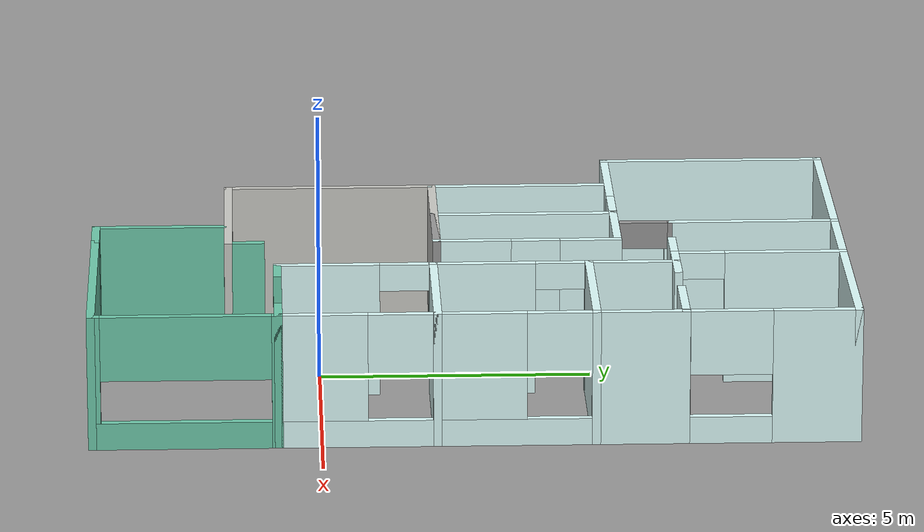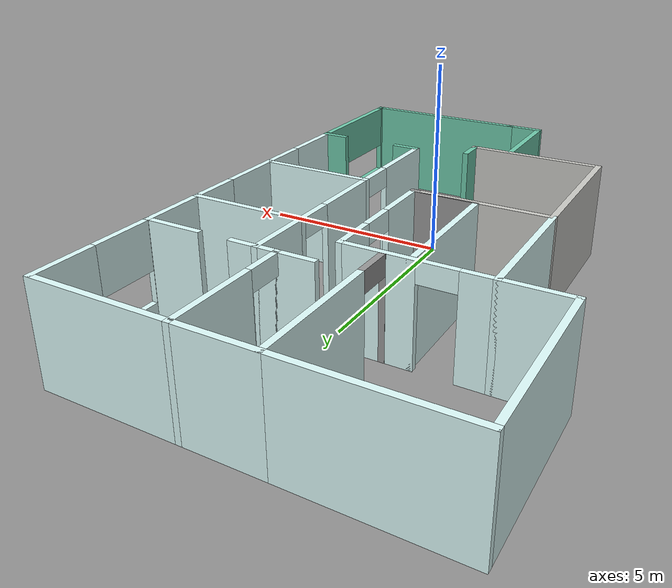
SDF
<?xml version='1.0'?>
<sdf version='1.6'>
  <model name='Building'>
    <pose frame=''>-0.715 2.755 0 0 -0 0</pose>
    <link name='Wall_1'>
      <collision name='Wall_1_Collision'>
        <geometry>
          <box>
            <size>3.5 0.15 2.5</size>
          </box>
        </geometry>
        <pose frame=''>0 0 1.25 0 -0 0</pose>
      </collision>
      <visual name='Wall_1_Visual'>
        <pose frame=''>0 0 1.25 0 -0 0</pose>
        <geometry>
          <box>
            <size>3.5 0.15 2.5</size>
          </box>
        </geometry>
        <material>
          <script>
            <uri>file://media/materials/scripts/gazebo.material</uri>
            <name>Gazebo/Grey</name>
          </script>
          <ambient>0.878431 1 0.996078 1</ambient>
        </material>
        <meta>
          <layer>0</layer>
        </meta>
      </visual>
      <pose frame=''>2.85 6.875 0 0 -0 0</pose>
    </link>
    <link name='Wall_10'>
      <pose frame=''>-2.1 2.775 0 0 -0 0</pose>
      <visual name='Wall_10_Visual_0'>
        <pose frame=''>-1.3425 0 1.25 0 -0 0</pose>
        <geometry>
          <box>
            <size>2.315 0.15 2.5</size>
          </box>
        </geometry>
        <material>
          <script>
            <uri>file://media/materials/scripts/gazebo.material</uri>
            <name>Gazebo/Grey</name>
          </script>
          <ambient>0.878431 1 0.996078 1</ambient>
        </material>
        <meta>
          <layer>0</layer>
        </meta>
      </visual>
      <collision name='Wall_10_Collision_0'>
        <geometry>
          <box>
            <size>2.315 0.15 2.5</size>
          </box>
        </geometry>
        <pose frame=''>-1.3425 0 1.25 0 -0 0</pose>
      </collision>
      <visual name='Wall_10_Visual_1'>
        <pose frame=''>1.6075 0 1.25 0 -0 0</pose>
        <geometry>
          <box>
            <size>1.785 0.15 2.5</size>
          </box>
        </geometry>
        <material>
          <script>
            <uri>file://media/materials/scripts/gazebo.material</uri>
            <name>Gazebo/Grey</name>
          </script>
          <ambient>0.878431 1 0.996078 1</ambient>
        </material>
        <meta>
          <layer>0</layer>
        </meta>
      </visual>
      <collision name='Wall_10_Collision_1'>
        <geometry>
          <box>
            <size>1.785 0.15 2.5</size>
          </box>
        </geometry>
        <pose frame=''>1.6075 0 1.25 0 -0 0</pose>
      </collision>
      <visual name='Wall_10_Visual_2'>
        <pose frame=''>0.265 0 2.25 0 -0 0</pose>
        <geometry>
          <box>
            <size>0.9 0.15 0.5</size>
          </box>
        </geometry>
        <material>
          <script>
            <uri>file://media/materials/scripts/gazebo.material</uri>
            <name>Gazebo/Grey</name>
          </script>
          <ambient>0.878431 1 0.996078 1</ambient>
        </material>
        <meta>
          <layer>0</layer>
        </meta>
      </visual>
      <collision name='Wall_10_Collision_2'>
        <geometry>
          <box>
            <size>0.9 0.15 0.5</size>
          </box>
        </geometry>
        <pose frame=''>0.265 0 2.25 0 -0 0</pose>
      </collision>
    </link>
    <link name='Wall_12'>
      <collision name='Wall_12_Collision'>
        <geometry>
          <box>
            <size>1.75 0.15 2.5</size>
          </box>
        </geometry>
        <pose frame=''>0 0 1.25 0 -0 0</pose>
      </collision>
      <visual name='Wall_12_Visual'>
        <pose frame=''>0 0 1.25 0 -0 0</pose>
        <geometry>
          <box>
            <size>1.75 0.15 2.5</size>
          </box>
        </geometry>
        <material>
          <script>
            <uri>file://media/materials/scripts/gazebo.material</uri>
            <name>Gazebo/Grey</name>
          </script>
          <ambient>0.878431 1 0.996078 1</ambient>
        </material>
        <meta>
          <layer>0</layer>
        </meta>
      </visual>
      <pose frame=''>4.525 2.975 0 0 0 -1.5708</pose>
    </link>
    <link name='Wall_16'>
      <collision name='Wall_16_Collision'>
        <geometry>
          <box>
            <size>3 0.15 2.5</size>
          </box>
        </geometry>
        <pose frame=''>0 0 1.25 0 -0 0</pose>
      </collision>
      <visual name='Wall_16_Visual'>
        <pose frame=''>0 0 1.25 0 -0 0</pose>
        <geometry>
          <box>
            <size>3 0.15 2.5</size>
          </box>
        </geometry>
        <material>
          <script>
            <uri>file://media/materials/scripts/gazebo.material</uri>
            <name>Gazebo/Grey</name>
          </script>
          <ambient>0.878431 1 0.996078 1</ambient>
        </material>
        <meta>
          <layer>0</layer>
        </meta>
      </visual>
      <pose frame=''>3.1 2.175 0 0 -0 3.14159</pose>
    </link>
    <link name='Wall_17'>
      <collision name='Wall_17_Collision'>
        <geometry>
          <box>
            <size>1.75 0.15 2.5</size>
          </box>
        </geometry>
        <pose frame=''>0 0 1.25 0 -0 0</pose>
      </collision>
      <visual name='Wall_17_Visual'>
        <pose frame=''>0 0 1.25 0 -0 0</pose>
        <geometry>
          <box>
            <size>1.75 0.15 2.5</size>
          </box>
        </geometry>
        <material>
          <script>
            <uri>file://media/materials/scripts/gazebo.material</uri>
            <name>Gazebo/Grey</name>
          </script>
          <ambient>0.878431 1 0.996078 1</ambient>
        </material>
        <meta>
          <layer>0</layer>
        </meta>
      </visual>
      <pose frame=''>1.675 2.975 0 0 -0 1.5708</pose>
    </link>
    <link name='Wall_19'>
      <pose frame=''>4.525 0.75 0 0 0 -1.5708</pose>
      <visual name='Wall_19_Visual_0'>
        <pose frame=''>-1.4225 0 1.25 0 -0 0</pose>
        <geometry>
          <box>
            <size>0.155 0.15 2.5</size>
          </box>
        </geometry>
        <material>
          <script>
            <uri>file://media/materials/scripts/gazebo.material</uri>
            <name>Gazebo/Grey</name>
          </script>
          <ambient>0.878431 1 0.996078 1</ambient>
        </material>
        <meta>
          <layer>0</layer>
        </meta>
      </visual>
      <collision name='Wall_19_Collision_0'>
        <geometry>
          <box>
            <size>0.155 0.15 2.5</size>
          </box>
        </geometry>
        <pose frame=''>-1.4225 0 1.25 0 -0 0</pose>
      </collision>
      <visual name='Wall_19_Visual_1'>
        <pose frame=''>0.0775 0 0.25 0 -0 0</pose>
        <geometry>
          <box>
            <size>2.845 0.15 0.5</size>
          </box>
        </geometry>
        <material>
          <script>
            <uri>file://media/materials/scripts/gazebo.material</uri>
            <name>Gazebo/Grey</name>
          </script>
          <ambient>0.878431 1 0.996078 1</ambient>
        </material>
        <meta>
          <layer>0</layer>
        </meta>
      </visual>
      <collision name='Wall_19_Collision_1'>
        <geometry>
          <box>
            <size>2.845 0.15 0.5</size>
          </box>
        </geometry>
        <pose frame=''>0.0775 0 0.25 0 -0 0</pose>
      </collision>
      <visual name='Wall_19_Visual_2'>
        <pose frame=''>0.6625 0 1.5 0 -0 0</pose>
        <geometry>
          <box>
            <size>1.675 0.15 2</size>
          </box>
        </geometry>
        <material>
          <script>
            <uri>file://media/materials/scripts/gazebo.material</uri>
            <name>Gazebo/Grey</name>
          </script>
          <ambient>0.878431 1 0.996078 1</ambient>
        </material>
        <meta>
          <layer>0</layer>
        </meta>
      </visual>
      <collision name='Wall_19_Collision_2'>
        <geometry>
          <box>
            <size>1.675 0.15 2</size>
          </box>
        </geometry>
        <pose frame=''>0.6625 0 1.5 0 -0 0</pose>
      </collision>
      <visual name='Wall_19_Visual_3'>
        <pose frame=''>-0.76 0 1.9 0 -0 0</pose>
        <geometry>
          <box>
            <size>1.17 0.15 1.2</size>
          </box>
        </geometry>
        <material>
          <script>
            <uri>file://media/materials/scripts/gazebo.material</uri>
            <name>Gazebo/Grey</name>
          </script>
          <ambient>0.878431 1 0.996078 1</ambient>
        </material>
        <meta>
          <layer>0</layer>
        </meta>
      </visual>
      <collision name='Wall_19_Collision_3'>
        <geometry>
          <box>
            <size>1.17 0.15 1.2</size>
          </box>
        </geometry>
        <pose frame=''>-0.76 0 1.9 0 -0 0</pose>
      </collision>
    </link>
    <link name='Wall_2'>
      <pose frame=''>4.525 5.325 0 0 0 -1.5708</pose>
      <visual name='Wall_2_Visual_0'>
        <pose frame=''>-0.8175 0 1.25 0 -0 0</pose>
        <geometry>
          <box>
            <size>1.615 0.15 2.5</size>
          </box>
        </geometry>
        <material>
          <script>
            <uri>file://media/materials/scripts/gazebo.material</uri>
            <name>Gazebo/Grey</name>
          </script>
          <ambient>0.878431 1 0.996078 1</ambient>
        </material>
        <meta>
          <layer>0</layer>
        </meta>
      </visual>
      <collision name='Wall_2_Collision_0'>
        <geometry>
          <box>
            <size>1.615 0.15 2.5</size>
          </box>
        </geometry>
        <pose frame=''>-0.8175 0 1.25 0 -0 0</pose>
      </collision>
      <visual name='Wall_2_Visual_1'>
        <pose frame=''>0.8075 0 0.25 0 -0 0</pose>
        <geometry>
          <box>
            <size>1.635 0.15 0.5</size>
          </box>
        </geometry>
        <material>
          <script>
            <uri>file://media/materials/scripts/gazebo.material</uri>
            <name>Gazebo/Grey</name>
          </script>
          <ambient>0.878431 1 0.996078 1</ambient>
        </material>
        <meta>
          <layer>0</layer>
        </meta>
      </visual>
      <collision name='Wall_2_Collision_1'>
        <geometry>
          <box>
            <size>1.635 0.15 0.5</size>
          </box>
        </geometry>
        <pose frame=''>0.8075 0 0.25 0 -0 0</pose>
      </collision>
      <visual name='Wall_2_Visual_2'>
        <pose frame=''>1.5475 0 1.5 0 -0 0</pose>
        <geometry>
          <box>
            <size>0.155 0.15 2</size>
          </box>
        </geometry>
        <material>
          <script>
            <uri>file://media/materials/scripts/gazebo.material</uri>
            <name>Gazebo/Grey</name>
          </script>
          <ambient>0.878431 1 0.996078 1</ambient>
        </material>
        <meta>
          <layer>0</layer>
        </meta>
      </visual>
      <collision name='Wall_2_Collision_2'>
        <geometry>
          <box>
            <size>0.155 0.15 2</size>
          </box>
        </geometry>
        <pose frame=''>1.5475 0 1.5 0 -0 0</pose>
      </collision>
      <visual name='Wall_2_Visual_3'>
        <pose frame=''>0.73 0 1.9 0 -0 0</pose>
        <geometry>
          <box>
            <size>1.48 0.15 1.2</size>
          </box>
        </geometry>
        <material>
          <script>
            <uri>file://media/materials/scripts/gazebo.material</uri>
            <name>Gazebo/Grey</name>
          </script>
          <ambient>0.878431 1 0.996078 1</ambient>
        </material>
        <meta>
          <layer>0</layer>
        </meta>
      </visual>
      <collision name='Wall_2_Collision_3'>
        <geometry>
          <box>
            <size>1.48 0.15 1.2</size>
          </box>
        </geometry>
        <pose frame=''>0.73 0 1.9 0 -0 0</pose>
      </collision>
    </link>
    <link name='Wall_20'>
      <collision name='Wall_20_Collision'>
        <geometry>
          <box>
            <size>3 0.15 2.5</size>
          </box>
        </geometry>
        <pose frame=''>0 0 1.25 0 -0 0</pose>
      </collision>
      <visual name='Wall_20_Visual'>
        <pose frame=''>0 0 1.25 0 -0 0</pose>
        <geometry>
          <box>
            <size>3 0.15 2.5</size>
          </box>
        </geometry>
        <material>
          <script>
            <uri>file://media/materials/scripts/gazebo.material</uri>
            <name>Gazebo/Grey</name>
          </script>
          <ambient>0.878431 1 0.996078 1</ambient>
        </material>
        <meta>
          <layer>0</layer>
        </meta>
      </visual>
      <pose frame=''>3.1 -0.675 0 0 -0 3.14159</pose>
    </link>
    <link name='Wall_21'>
      <pose frame=''>1.675 0.75 0 0 -0 1.5708</pose>
      <visual name='Wall_21_Visual_0'>
        <pose frame=''>-0.5275 0 1.25 0 -0 0</pose>
        <geometry>
          <box>
            <size>1.945 0.15 2.5</size>
          </box>
        </geometry>
        <material>
          <script>
            <uri>file://media/materials/scripts/gazebo.material</uri>
            <name>Gazebo/Grey</name>
          </script>
          <ambient>0.878431 1 0.996078 1</ambient>
        </material>
        <meta>
          <layer>0</layer>
        </meta>
      </visual>
      <collision name='Wall_21_Collision_0'>
        <geometry>
          <box>
            <size>1.945 0.15 2.5</size>
          </box>
        </geometry>
        <pose frame=''>-0.5275 0 1.25 0 -0 0</pose>
      </collision>
      <visual name='Wall_21_Visual_1'>
        <pose frame=''>1.4225 0 1.25 0 -0 0</pose>
        <geometry>
          <box>
            <size>0.155 0.15 2.5</size>
          </box>
        </geometry>
        <material>
          <script>
            <uri>file://media/materials/scripts/gazebo.material</uri>
            <name>Gazebo/Grey</name>
          </script>
          <ambient>0.878431 1 0.996078 1</ambient>
        </material>
        <meta>
          <layer>0</layer>
        </meta>
      </visual>
      <collision name='Wall_21_Collision_1'>
        <geometry>
          <box>
            <size>0.155 0.15 2.5</size>
          </box>
        </geometry>
        <pose frame=''>1.4225 0 1.25 0 -0 0</pose>
      </collision>
      <visual name='Wall_21_Visual_2'>
        <pose frame=''>0.895 0 2.25 0 -0 0</pose>
        <geometry>
          <box>
            <size>0.9 0.15 0.5</size>
          </box>
        </geometry>
        <material>
          <script>
            <uri>file://media/materials/scripts/gazebo.material</uri>
            <name>Gazebo/Grey</name>
          </script>
          <ambient>0.878431 1 0.996078 1</ambient>
        </material>
        <meta>
          <layer>0</layer>
        </meta>
      </visual>
      <collision name='Wall_21_Collision_2'>
        <geometry>
          <box>
            <size>0.9 0.15 0.5</size>
          </box>
        </geometry>
        <pose frame=''>0.895 0 2.25 0 -0 0</pose>
      </collision>
    </link>
    <link name='Wall_23'>
      <pose frame=''>0.325 1.1 0 0 0 -1.5708</pose>
      <visual name='Wall_23_Visual_0'>
        <pose frame=''>-1.1775 0 1.25 0 -0 0</pose>
        <geometry>
          <box>
            <size>1.145 0.15 2.5</size>
          </box>
        </geometry>
        <material>
          <script>
            <uri>file://media/materials/scripts/gazebo.material</uri>
            <name>Gazebo/Grey</name>
          </script>
          <ambient>0.878431 1 0.996078 1</ambient>
        </material>
        <meta>
          <layer>0</layer>
        </meta>
      </visual>
      <collision name='Wall_23_Collision_0'>
        <geometry>
          <box>
            <size>1.145 0.15 2.5</size>
          </box>
        </geometry>
        <pose frame=''>-1.1775 0 1.25 0 -0 0</pose>
      </collision>
      <visual name='Wall_23_Visual_1'>
        <pose frame=''>1.0225 0 1.25 0 -0 0</pose>
        <geometry>
          <box>
            <size>1.455 0.15 2.5</size>
          </box>
        </geometry>
        <material>
          <script>
            <uri>file://media/materials/scripts/gazebo.material</uri>
            <name>Gazebo/Grey</name>
          </script>
          <ambient>0.878431 1 0.996078 1</ambient>
        </material>
        <meta>
          <layer>0</layer>
        </meta>
      </visual>
      <collision name='Wall_23_Collision_1'>
        <geometry>
          <box>
            <size>1.455 0.15 2.5</size>
          </box>
        </geometry>
        <pose frame=''>1.0225 0 1.25 0 -0 0</pose>
      </collision>
      <visual name='Wall_23_Visual_2'>
        <pose frame=''>-0.155 0 2.25 0 -0 0</pose>
        <geometry>
          <box>
            <size>0.9 0.15 0.5</size>
          </box>
        </geometry>
        <material>
          <script>
            <uri>file://media/materials/scripts/gazebo.material</uri>
            <name>Gazebo/Grey</name>
          </script>
          <ambient>0.878431 1 0.996078 1</ambient>
        </material>
        <meta>
          <layer>0</layer>
        </meta>
      </visual>
      <collision name='Wall_23_Collision_2'>
        <geometry>
          <box>
            <size>0.9 0.15 0.5</size>
          </box>
        </geometry>
        <pose frame=''>-0.155 0 2.25 0 -0 0</pose>
      </collision>
    </link>
    <link name='Wall_25'>
      <pose frame=''>4.525 -2.1 0 0 0 -1.5708</pose>
      <visual name='Wall_25_Visual_0'>
        <pose frame=''>-1.4225 0 1.25 0 -0 0</pose>
        <geometry>
          <box>
            <size>0.155 0.15 2.5</size>
          </box>
        </geometry>
        <material>
          <script>
            <uri>file://media/materials/scripts/gazebo.material</uri>
            <name>Gazebo/Grey</name>
          </script>
          <ambient>0.878431 1 0.996078 1</ambient>
        </material>
        <meta>
          <layer>0</layer>
        </meta>
      </visual>
      <collision name='Wall_25_Collision_0'>
        <geometry>
          <box>
            <size>0.155 0.15 2.5</size>
          </box>
        </geometry>
        <pose frame=''>-1.4225 0 1.25 0 -0 0</pose>
      </collision>
      <visual name='Wall_25_Visual_1'>
        <pose frame=''>0.0775 0 0.25 0 -0 0</pose>
        <geometry>
          <box>
            <size>2.845 0.15 0.5</size>
          </box>
        </geometry>
        <material>
          <script>
            <uri>file://media/materials/scripts/gazebo.material</uri>
            <name>Gazebo/Grey</name>
          </script>
          <ambient>0.878431 1 0.996078 1</ambient>
        </material>
        <meta>
          <layer>0</layer>
        </meta>
      </visual>
      <collision name='Wall_25_Collision_1'>
        <geometry>
          <box>
            <size>2.845 0.15 0.5</size>
          </box>
        </geometry>
        <pose frame=''>0.0775 0 0.25 0 -0 0</pose>
      </collision>
      <visual name='Wall_25_Visual_2'>
        <pose frame=''>0.6625 0 1.5 0 -0 0</pose>
        <geometry>
          <box>
            <size>1.675 0.15 2</size>
          </box>
        </geometry>
        <material>
          <script>
            <uri>file://media/materials/scripts/gazebo.material</uri>
            <name>Gazebo/Grey</name>
          </script>
          <ambient>0.878431 1 0.996078 1</ambient>
        </material>
        <meta>
          <layer>0</layer>
        </meta>
      </visual>
      <collision name='Wall_25_Collision_2'>
        <geometry>
          <box>
            <size>1.675 0.15 2</size>
          </box>
        </geometry>
        <pose frame=''>0.6625 0 1.5 0 -0 0</pose>
      </collision>
      <visual name='Wall_25_Visual_3'>
        <pose frame=''>-0.76 0 1.9 0 -0 0</pose>
        <geometry>
          <box>
            <size>1.17 0.15 1.2</size>
          </box>
        </geometry>
        <material>
          <script>
            <uri>file://media/materials/scripts/gazebo.material</uri>
            <name>Gazebo/Grey</name>
          </script>
          <ambient>0.878431 1 0.996078 1</ambient>
        </material>
        <meta>
          <layer>0</layer>
        </meta>
      </visual>
      <collision name='Wall_25_Collision_3'>
        <geometry>
          <box>
            <size>1.17 0.15 1.2</size>
          </box>
        </geometry>
        <pose frame=''>-0.76 0 1.9 0 -0 0</pose>
      </collision>
    </link>
    <link name='Wall_26'>
      <collision name='Wall_26_Collision'>
        <geometry>
          <box>
            <size>0.75 0.15 2.5</size>
          </box>
        </geometry>
        <pose frame=''>0 0 1.25 0 -0 0</pose>
      </collision>
      <visual name='Wall_26_Visual'>
        <pose frame=''>0 0 1.25 0 -0 0</pose>
        <geometry>
          <box>
            <size>0.75 0.15 2.5</size>
          </box>
        </geometry>
        <material>
          <script>
            <uri>file://media/materials/scripts/gazebo.material</uri>
            <name>Gazebo/Grey</name>
          </script>
          <ambient>0.435294 0.796078 0.67451 1</ambient>
        </material>
        <meta>
          <layer>0</layer>
        </meta>
      </visual>
      <pose frame=''>4.225 -3.525 0 0 -0 3.14159</pose>
    </link>
    <link name='Wall_28'>
      <pose frame=''>1.675 -2.1 0 0 0 -1.5708</pose>
      <visual name='Wall_28_Visual_0'>
        <pose frame=''>-1.4225 0 1.25 0 -0 0</pose>
        <geometry>
          <box>
            <size>0.155 0.15 2.5</size>
          </box>
        </geometry>
        <material>
          <script>
            <uri>file://media/materials/scripts/gazebo.material</uri>
            <name>Gazebo/Grey</name>
          </script>
          <ambient>0.878431 1 0.996078 1</ambient>
        </material>
        <meta>
          <layer>0</layer>
        </meta>
      </visual>
      <collision name='Wall_28_Collision_0'>
        <geometry>
          <box>
            <size>0.155 0.15 2.5</size>
          </box>
        </geometry>
        <pose frame=''>-1.4225 0 1.25 0 -0 0</pose>
      </collision>
      <visual name='Wall_28_Visual_1'>
        <pose frame=''>0.5275 0 1.25 0 -0 0</pose>
        <geometry>
          <box>
            <size>1.945 0.15 2.5</size>
          </box>
        </geometry>
        <material>
          <script>
            <uri>file://media/materials/scripts/gazebo.material</uri>
            <name>Gazebo/Grey</name>
          </script>
          <ambient>0.878431 1 0.996078 1</ambient>
        </material>
        <meta>
          <layer>0</layer>
        </meta>
      </visual>
      <collision name='Wall_28_Collision_1'>
        <geometry>
          <box>
            <size>1.945 0.15 2.5</size>
          </box>
        </geometry>
        <pose frame=''>0.5275 0 1.25 0 -0 0</pose>
      </collision>
      <visual name='Wall_28_Visual_2'>
        <pose frame=''>-0.895 0 2.25 0 -0 0</pose>
        <geometry>
          <box>
            <size>0.9 0.15 0.5</size>
          </box>
        </geometry>
        <material>
          <script>
            <uri>file://media/materials/scripts/gazebo.material</uri>
            <name>Gazebo/Grey</name>
          </script>
          <ambient>0.878431 1 0.996078 1</ambient>
        </material>
        <meta>
          <layer>0</layer>
        </meta>
      </visual>
      <collision name='Wall_28_Collision_2'>
        <geometry>
          <box>
            <size>0.9 0.15 0.5</size>
          </box>
        </geometry>
        <pose frame=''>-0.895 0 2.25 0 -0 0</pose>
      </collision>
    </link>
    <link name='Wall_29'>
      <collision name='Wall_29_Collision'>
        <geometry>
          <box>
            <size>0.75 0.15 2.5</size>
          </box>
        </geometry>
        <pose frame=''>0 0 1.25 0 -0 0</pose>
      </collision>
      <visual name='Wall_29_Visual'>
        <pose frame=''>0 0 1.25 0 -0 0</pose>
        <geometry>
          <box>
            <size>0.75 0.15 2.5</size>
          </box>
        </geometry>
        <material>
          <script>
            <uri>file://media/materials/scripts/gazebo.material</uri>
            <name>Gazebo/Grey</name>
          </script>
          <ambient>0.435294 0.796078 0.67451 1</ambient>
        </material>
        <meta>
          <layer>0</layer>
        </meta>
      </visual>
      <pose frame=''>1.975 -3.525 0 0 -0 0</pose>
    </link>
    <link name='Wall_31'>
      <collision name='Wall_31_Collision'>
        <geometry>
          <box>
            <size>1.73 0.15 2.5</size>
          </box>
        </geometry>
        <pose frame=''>0 0 1.25 0 -0 0</pose>
      </collision>
      <visual name='Wall_31_Visual'>
        <pose frame=''>0 0 1.25 0 -0 0</pose>
        <geometry>
          <box>
            <size>1.73 0.15 2.5</size>
          </box>
        </geometry>
        <material>
          <script>
            <uri>file://media/materials/scripts/gazebo.material</uri>
            <name>Gazebo/Grey</name>
          </script>
          <ambient>1 1 1 1</ambient>
        </material>
        <meta>
          <layer>0</layer>
        </meta>
      </visual>
      <pose frame=''>-0.465 -0.575 0 0 -0 3.14159</pose>
    </link>
    <link name='Wall_32'>
      <collision name='Wall_32_Collision'>
        <geometry>
          <box>
            <size>3.5 0.15 2.5</size>
          </box>
        </geometry>
        <pose frame=''>0 0 1.25 0 -0 0</pose>
      </collision>
      <visual name='Wall_32_Visual'>
        <pose frame=''>0 0 1.25 0 -0 0</pose>
        <geometry>
          <box>
            <size>3.5 0.15 2.5</size>
          </box>
        </geometry>
        <material>
          <script>
            <uri>file://media/materials/scripts/gazebo.material</uri>
            <name>Gazebo/Grey</name>
          </script>
          <ambient>0.878431 1 0.996078 1</ambient>
        </material>
        <meta>
          <layer>0</layer>
        </meta>
      </visual>
      <pose frame=''>-1.265 1.1 0 0 -0 1.5708</pose>
    </link>
    <link name='Wall_34'>
      <collision name='Wall_34_Collision'>
        <geometry>
          <box>
            <size>3.5 0.15 2.5</size>
          </box>
        </geometry>
        <pose frame=''>0 0 1.25 0 -0 0</pose>
      </collision>
      <visual name='Wall_34_Visual'>
        <pose frame=''>0 0 1.25 0 -0 0</pose>
        <geometry>
          <box>
            <size>3.5 0.15 2.5</size>
          </box>
        </geometry>
        <material>
          <script>
            <uri>file://media/materials/scripts/gazebo.material</uri>
            <name>Gazebo/CeilingTiled</name>
          </script>
          <ambient>0.435294 0.796078 0.67451 1</ambient>
        </material>
        <meta>
          <layer>0</layer>
        </meta>
      </visual>
      <pose frame=''>-1.35 -0.575 0 0 -0 3.14159</pose>
    </link>
    <link name='Wall_36'>
      <collision name='Wall_36_Collision'>
        <geometry>
          <box>
            <size>4 0.15 2.5</size>
          </box>
        </geometry>
        <pose frame=''>0 0 1.25 0 -0 0</pose>
      </collision>
      <visual name='Wall_36_Visual'>
        <pose frame=''>0 0 1.25 0 -0 0</pose>
        <geometry>
          <box>
            <size>4 0.15 2.5</size>
          </box>
        </geometry>
        <material>
          <script>
            <uri>file://media/materials/scripts/gazebo.material</uri>
            <name>Gazebo/CeilingTiled</name>
          </script>
          <ambient>0.435294 0.796078 0.67451 1</ambient>
        </material>
        <meta>
          <layer>0</layer>
        </meta>
      </visual>
      <pose frame=''>-3.025 -2.5 0 0 0 -1.5708</pose>
    </link>
    <link name='Wall_37'>
      <collision name='Wall_37_Collision'>
        <geometry>
          <box>
            <size>3.5 0.15 2.5</size>
          </box>
        </geometry>
        <pose frame=''>0 0 1.25 0 -0 0</pose>
      </collision>
      <visual name='Wall_37_Visual'>
        <pose frame=''>0 0 1.25 0 -0 0</pose>
        <geometry>
          <box>
            <size>3.5 0.15 2.5</size>
          </box>
        </geometry>
        <material>
          <script>
            <uri>file://media/materials/scripts/gazebo.material</uri>
            <name>Gazebo/CeilingTiled</name>
          </script>
          <ambient>0.435294 0.796078 0.67451 1</ambient>
        </material>
        <meta>
          <layer>0</layer>
        </meta>
      </visual>
      <pose frame=''>-1.35 -4.425 0 0 -0 0</pose>
    </link>
    <link name='Wall_38'>
      <collision name='Wall_38_Collision'>
        <geometry>
          <box>
            <size>0.75 0.15 2.5</size>
          </box>
        </geometry>
        <pose frame=''>0 0 1.25 0 -0 0</pose>
      </collision>
      <visual name='Wall_38_Visual'>
        <pose frame=''>0 0 1.25 0 -0 0</pose>
        <geometry>
          <box>
            <size>0.75 0.15 2.5</size>
          </box>
        </geometry>
        <material>
          <script>
            <uri>file://media/materials/scripts/gazebo.material</uri>
            <name>Gazebo/Grey</name>
          </script>
          <ambient>0.435294 0.796078 0.67451 1</ambient>
        </material>
        <meta>
          <layer>0</layer>
        </meta>
      </visual>
      <pose frame=''>0.325 -4.125 0 0 -0 1.5708</pose>
    </link>
    <link name='Wall_4'>
      <pose frame=''>1.175 5.325 0 0 -0 1.5708</pose>
      <visual name='Wall_4_Visual_0'>
        <pose frame=''>-1.5775 0 1.25 0 -0 0</pose>
        <geometry>
          <box>
            <size>0.095 0.15 2.5</size>
          </box>
        </geometry>
        <material>
          <script>
            <uri>file://media/materials/scripts/gazebo.material</uri>
            <name>Gazebo/Grey</name>
          </script>
          <ambient>0.878431 1 0.996078 1</ambient>
        </material>
        <meta>
          <layer>0</layer>
        </meta>
      </visual>
      <collision name='Wall_4_Collision_0'>
        <geometry>
          <box>
            <size>0.095 0.15 2.5</size>
          </box>
        </geometry>
        <pose frame=''>-1.5775 0 1.25 0 -0 0</pose>
      </collision>
      <visual name='Wall_4_Visual_1'>
        <pose frame=''>0.4975 0 1.25 0 -0 0</pose>
        <geometry>
          <box>
            <size>2.255 0.15 2.5</size>
          </box>
        </geometry>
        <material>
          <script>
            <uri>file://media/materials/scripts/gazebo.material</uri>
            <name>Gazebo/Grey</name>
          </script>
          <ambient>0.878431 1 0.996078 1</ambient>
        </material>
        <meta>
          <layer>0</layer>
        </meta>
      </visual>
      <collision name='Wall_4_Collision_1'>
        <geometry>
          <box>
            <size>2.255 0.15 2.5</size>
          </box>
        </geometry>
        <pose frame=''>0.4975 0 1.25 0 -0 0</pose>
      </collision>
      <visual name='Wall_4_Visual_2'>
        <pose frame=''>-1.08 0 2.25 0 -0 0</pose>
        <geometry>
          <box>
            <size>0.9 0.15 0.5</size>
          </box>
        </geometry>
        <material>
          <script>
            <uri>file://media/materials/scripts/gazebo.material</uri>
            <name>Gazebo/Grey</name>
          </script>
          <ambient>0.878431 1 0.996078 1</ambient>
        </material>
        <meta>
          <layer>0</layer>
        </meta>
      </visual>
      <collision name='Wall_4_Collision_2'>
        <geometry>
          <box>
            <size>0.9 0.15 0.5</size>
          </box>
        </geometry>
        <pose frame=''>-1.08 0 2.25 0 -0 0</pose>
      </collision>
    </link>
    <link name='Wall_42'>
      <pose frame=''>4.525 -5.2 0 0 0 -1.5708</pose>
      <visual name='Wall_42_Visual_0'>
        <pose frame=''>-1.6525 0 1.25 0 -0 0</pose>
        <geometry>
          <box>
            <size>0.195 0.15 2.5</size>
          </box>
        </geometry>
        <material>
          <script>
            <uri>file://media/materials/scripts/gazebo.material</uri>
            <name>Gazebo/Grey</name>
          </script>
          <ambient>0.435294 0.796078 0.67451 1</ambient>
        </material>
        <meta>
          <layer>0</layer>
        </meta>
      </visual>
      <collision name='Wall_42_Collision_0'>
        <geometry>
          <box>
            <size>0.195 0.15 2.5</size>
          </box>
        </geometry>
        <pose frame=''>-1.6525 0 1.25 0 -0 0</pose>
      </collision>
      <visual name='Wall_42_Visual_1'>
        <pose frame=''>0.0975 0 0.25 0 -0 0</pose>
        <geometry>
          <box>
            <size>3.305 0.15 0.5</size>
          </box>
        </geometry>
        <material>
          <script>
            <uri>file://media/materials/scripts/gazebo.material</uri>
            <name>Gazebo/Grey</name>
          </script>
          <ambient>0.435294 0.796078 0.67451 1</ambient>
        </material>
        <meta>
          <layer>0</layer>
        </meta>
      </visual>
      <collision name='Wall_42_Collision_1'>
        <geometry>
          <box>
            <size>3.305 0.15 0.5</size>
          </box>
        </geometry>
        <pose frame=''>0.0975 0 0.25 0 -0 0</pose>
      </collision>
      <visual name='Wall_42_Visual_2'>
        <pose frame=''>1.6325 0 1.5 0 -0 0</pose>
        <geometry>
          <box>
            <size>0.235 0.15 2</size>
          </box>
        </geometry>
        <material>
          <script>
            <uri>file://media/materials/scripts/gazebo.material</uri>
            <name>Gazebo/Grey</name>
          </script>
          <ambient>0.435294 0.796078 0.67451 1</ambient>
        </material>
        <meta>
          <layer>0</layer>
        </meta>
      </visual>
      <collision name='Wall_42_Collision_2'>
        <geometry>
          <box>
            <size>0.235 0.15 2</size>
          </box>
        </geometry>
        <pose frame=''>1.6325 0 1.5 0 -0 0</pose>
      </collision>
      <visual name='Wall_42_Visual_3'>
        <pose frame=''>-0.02 0 1.9 0 -0 0</pose>
        <geometry>
          <box>
            <size>3.07 0.15 1.2</size>
          </box>
        </geometry>
        <material>
          <script>
            <uri>file://media/materials/scripts/gazebo.material</uri>
            <name>Gazebo/Grey</name>
          </script>
          <ambient>0.435294 0.796078 0.67451 1</ambient>
        </material>
        <meta>
          <layer>0</layer>
        </meta>
      </visual>
      <collision name='Wall_42_Collision_3'>
        <geometry>
          <box>
            <size>3.07 0.15 1.2</size>
          </box>
        </geometry>
        <pose frame=''>-0.02 0 1.9 0 -0 0</pose>
      </collision>
    </link>
    <link name='Wall_43'>
      <collision name='Wall_43_Collision'>
        <geometry>
          <box>
            <size>4.5 0.15 2.5</size>
          </box>
        </geometry>
        <pose frame=''>0 0 1.25 0 -0 0</pose>
      </collision>
      <visual name='Wall_43_Visual'>
        <pose frame=''>0 0 1.25 0 -0 0</pose>
        <geometry>
          <box>
            <size>4.5 0.15 2.5</size>
          </box>
        </geometry>
        <material>
          <script>
            <uri>file://media/materials/scripts/gazebo.material</uri>
            <name>Gazebo/Grey</name>
          </script>
          <ambient>0.435294 0.796078 0.67451 1</ambient>
        </material>
        <meta>
          <layer>0</layer>
        </meta>
      </visual>
      <pose frame=''>2.35 -6.875 0 0 -0 3.14159</pose>
    </link>
    <link name='Wall_45'>
      <pose frame=''>-0.25 -6.875 0 0 -0 3.14159</pose>
      <visual name='Wall_45_Visual_0'>
        <pose frame=''>0 0 1.25 0 -0 0</pose>
        <geometry>
          <box>
            <size>1 0.15 2.5</size>
          </box>
        </geometry>
        <material>
          <script>
            <uri>file://media/materials/scripts/gazebo.material</uri>
            <name>Gazebo/Grey</name>
          </script>
          <ambient>0.435294 0.796078 0.67451 1</ambient>
        </material>
        <meta>
          <layer>0</layer>
        </meta>
      </visual>
      <collision name='Wall_45_Collision_0'>
        <geometry>
          <box>
            <size>1 0.15 2.5</size>
          </box>
        </geometry>
        <pose frame=''>0 0 1.25 0 -0 0</pose>
      </collision>
      <visual name='Wall_45_Visual_1'>
        <pose frame=''>0.4025 0 1.25 0 -0 0</pose>
        <geometry>
          <box>
            <size>0.195 0.15 2.5</size>
          </box>
        </geometry>
        <material>
          <script>
            <uri>file://media/materials/scripts/gazebo.material</uri>
            <name>Gazebo/Grey</name>
          </script>
          <ambient>0.435294 0.796078 0.67451 1</ambient>
        </material>
        <meta>
          <layer>0</layer>
        </meta>
      </visual>
      <collision name='Wall_45_Collision_1'>
        <geometry>
          <box>
            <size>0.195 0.15 2.5</size>
          </box>
        </geometry>
        <pose frame=''>0.4025 0 1.25 0 -0 0</pose>
      </collision>
    </link>
    <link name='Wall_46'>
      <collision name='Wall_46_Collision'>
        <geometry>
          <box>
            <size>2.5 0.15 2.5</size>
          </box>
        </geometry>
        <pose frame=''>0 0 1.25 0 -0 0</pose>
      </collision>
      <visual name='Wall_46_Visual'>
        <pose frame=''>0 0 1.25 0 -0 0</pose>
        <geometry>
          <box>
            <size>2.5 0.15 2.5</size>
          </box>
        </geometry>
        <material>
          <script>
            <uri>file://media/materials/scripts/gazebo.material</uri>
            <name>Gazebo/Grey</name>
          </script>
          <ambient>0.435294 0.796078 0.67451 1</ambient>
        </material>
        <meta>
          <layer>0</layer>
        </meta>
      </visual>
      <pose frame=''>-0.675 -5.7 0 0 -0 1.5708</pose>
    </link>
    <link name='Wall_48'>
      <pose frame=''>-0.675 3.35 0 0 0 -1.5708</pose>
      <visual name='Wall_48_Visual_0'>
        <pose frame=''>-0.4525 0 1.25 0 -0 0</pose>
        <geometry>
          <box>
            <size>0.095 0.15 2.5</size>
          </box>
        </geometry>
        <material>
          <script>
            <uri>file://media/materials/scripts/gazebo.material</uri>
            <name>Gazebo/Grey</name>
          </script>
          <ambient>1 1 1 1</ambient>
        </material>
        <meta>
          <layer>0</layer>
        </meta>
      </visual>
      <collision name='Wall_48_Collision_0'>
        <geometry>
          <box>
            <size>0.095 0.15 2.5</size>
          </box>
        </geometry>
        <pose frame=''>-0.4525 0 1.25 0 -0 0</pose>
      </collision>
      <visual name='Wall_48_Visual_1'>
        <pose frame=''>0.4975 0 1.25 0 -0 0</pose>
        <geometry>
          <box>
            <size>0.005 0.15 2.5</size>
          </box>
        </geometry>
        <material>
          <script>
            <uri>file://media/materials/scripts/gazebo.material</uri>
            <name>Gazebo/Grey</name>
          </script>
          <ambient>1 1 1 1</ambient>
        </material>
        <meta>
          <layer>0</layer>
        </meta>
      </visual>
      <collision name='Wall_48_Collision_1'>
        <geometry>
          <box>
            <size>0.005 0.15 2.5</size>
          </box>
        </geometry>
        <pose frame=''>0.4975 0 1.25 0 -0 0</pose>
      </collision>
      <visual name='Wall_48_Visual_2'>
        <pose frame=''>0.045 0 2.25 0 -0 0</pose>
        <geometry>
          <box>
            <size>0.9 0.15 0.5</size>
          </box>
        </geometry>
        <material>
          <script>
            <uri>file://media/materials/scripts/gazebo.material</uri>
            <name>Gazebo/Grey</name>
          </script>
          <ambient>1 1 1 1</ambient>
        </material>
        <meta>
          <layer>0</layer>
        </meta>
      </visual>
      <collision name='Wall_48_Collision_2'>
        <geometry>
          <box>
            <size>0.9 0.15 0.5</size>
          </box>
        </geometry>
        <pose frame=''>0.045 0 2.25 0 -0 0</pose>
      </collision>
    </link>
    <link name='Wall_5'>
      <collision name='Wall_5_Collision'>
        <geometry>
          <box>
            <size>2 0.15 2.5</size>
          </box>
        </geometry>
        <pose frame=''>0 0 1.25 0 -0 0</pose>
      </collision>
      <visual name='Wall_5_Visual'>
        <pose frame=''>0 0 1.25 0 -0 0</pose>
        <geometry>
          <box>
            <size>2 0.15 2.5</size>
          </box>
        </geometry>
        <material>
          <script>
            <uri>file://media/materials/scripts/gazebo.material</uri>
            <name>Gazebo/Grey</name>
          </script>
          <ambient>0.878431 1 0.996078 1</ambient>
        </material>
        <meta>
          <layer>0</layer>
        </meta>
      </visual>
      <pose frame=''>0.25 6.875 0 0 -0 3.14159</pose>
    </link>
    <link name='Wall_50'>
      <collision name='Wall_50_Collision'>
        <geometry>
          <box>
            <size>1 0.15 2.5</size>
          </box>
        </geometry>
        <pose frame=''>0 0 1.25 0 -0 0</pose>
      </collision>
      <visual name='Wall_50_Visual'>
        <pose frame=''>0 0 1.25 0 -0 0</pose>
        <geometry>
          <box>
            <size>1 0.15 2.5</size>
          </box>
        </geometry>
        <material>
          <script>
            <uri>file://media/materials/scripts/gazebo.material</uri>
            <name>Gazebo/Grey</name>
          </script>
          <ambient>0.878431 1 0.996078 1</ambient>
        </material>
        <meta>
          <layer>0</layer>
        </meta>
      </visual>
      <pose frame=''>0.75 3.775 0 0 -0 3.14159</pose>
    </link>
    <link name='Wall_52'>
      <collision name='Wall_52_Collision'>
        <geometry>
          <box>
            <size>3.5 0.15 2.5</size>
          </box>
        </geometry>
        <pose frame=''>0 0 1.25 0 -0 0</pose>
      </collision>
      <visual name='Wall_52_Visual'>
        <pose frame=''>0 0 1.25 0 -0 0</pose>
        <geometry>
          <box>
            <size>3.5 0.15 2.5</size>
          </box>
        </geometry>
        <material>
          <script>
            <uri>file://media/materials/scripts/gazebo.material</uri>
            <name>Gazebo/Grey</name>
          </script>
          <ambient>0.878431 1 0.996078 1</ambient>
        </material>
        <meta>
          <layer>0</layer>
        </meta>
      </visual>
      <pose frame=''>-3.025 1.1 0 0 -0 1.5708</pose>
    </link>
    <link name='Wall_54'>
      <collision name='Wall_54_Collision'>
        <geometry>
          <box>
            <size>1.25 0.15 2.5</size>
          </box>
        </geometry>
        <pose frame=''>0 0 1.25 0 -0 0</pose>
      </collision>
      <visual name='Wall_54_Visual'>
        <pose frame=''>0 0 1.25 0 -0 0</pose>
        <geometry>
          <box>
            <size>1.25 0.15 2.5</size>
          </box>
        </geometry>
        <material>
          <script>
            <uri>file://media/materials/scripts/gazebo.material</uri>
            <name>Gazebo/Grey</name>
          </script>
          <ambient>0.878431 1 0.996078 1</ambient>
        </material>
        <meta>
          <layer>0</layer>
        </meta>
      </visual>
      <pose frame=''>1.725 3.775 0 0 -0 0</pose>
    </link>
    <link name='Wall_56'>
      <collision name='Wall_56_Collision'>
        <geometry>
          <box>
            <size>1.5 0.15 2.5</size>
          </box>
        </geometry>
        <pose frame=''>0 0 1.25 0 -0 0</pose>
      </collision>
      <visual name='Wall_56_Visual'>
        <pose frame=''>0 0 1.25 0 -0 0</pose>
        <geometry>
          <box>
            <size>1.5 0.15 2.5</size>
          </box>
        </geometry>
        <material>
          <script>
            <uri>file://media/materials/scripts/gazebo.material</uri>
            <name>Gazebo/Grey</name>
          </script>
          <ambient>0.878431 1 0.996078 1</ambient>
        </material>
        <meta>
          <layer>0</layer>
        </meta>
      </visual>
      <pose frame=''>3.85 3.775 0 0 -0 3.14159</pose>
    </link>
    <link name='Wall_6'>
      <collision name='Wall_6_Collision'>
        <geometry>
          <box>
            <size>3.25 0.15 2.5</size>
          </box>
        </geometry>
        <pose frame=''>0 0 1.25 0 -0 0</pose>
      </collision>
      <visual name='Wall_6_Visual'>
        <pose frame=''>0 0 1.25 0 -0 0</pose>
        <geometry>
          <box>
            <size>3.25 0.15 2.5</size>
          </box>
        </geometry>
        <material>
          <script>
            <uri>file://media/materials/scripts/gazebo.material</uri>
            <name>Gazebo/Grey</name>
          </script>
          <ambient>0.878431 1 0.996078 1</ambient>
        </material>
        <meta>
          <layer>0</layer>
        </meta>
      </visual>
      <pose frame=''>-0.675 5.325 0 0 0 -1.5708</pose>
    </link>
    <link name='Wall_8'>
      <collision name='Wall_8_Collision'>
        <geometry>
          <box>
            <size>4 0.15 2.5</size>
          </box>
        </geometry>
        <pose frame=''>0 0 1.25 0 -0 0</pose>
      </collision>
      <visual name='Wall_8_Visual'>
        <pose frame=''>0 0 1.25 0 -0 0</pose>
        <geometry>
          <box>
            <size>4 0.15 2.5</size>
          </box>
        </geometry>
        <material>
          <script>
            <uri>file://media/materials/scripts/gazebo.material</uri>
            <name>Gazebo/Grey</name>
          </script>
          <ambient>0.878431 1 0.996078 1</ambient>
        </material>
        <meta>
          <layer>0</layer>
        </meta>
      </visual>
      <pose frame=''>-2.6 6.875 0 0 -0 3.14159</pose>
    </link>
    <link name='Wall_9'>
      <collision name='Wall_9_Collision'>
        <geometry>
          <box>
            <size>4.25 0.15 2.5</size>
          </box>
        </geometry>
        <pose frame=''>0 0 1.25 0 -0 0</pose>
      </collision>
      <visual name='Wall_9_Visual'>
        <pose frame=''>0 0 1.25 0 -0 0</pose>
        <geometry>
          <box>
            <size>4.25 0.15 2.5</size>
          </box>
        </geometry>
        <material>
          <script>
            <uri>file://media/materials/scripts/gazebo.material</uri>
            <name>Gazebo/Grey</name>
          </script>
          <ambient>0.878431 1 0.996078 1</ambient>
        </material>
        <meta>
          <layer>0</layer>
        </meta>
      </visual>
      <pose frame=''>-4.525 4.825 0 0 0 -1.5708</pose>
    </link>
    <static>1</static>
  </model>
</sdf>
